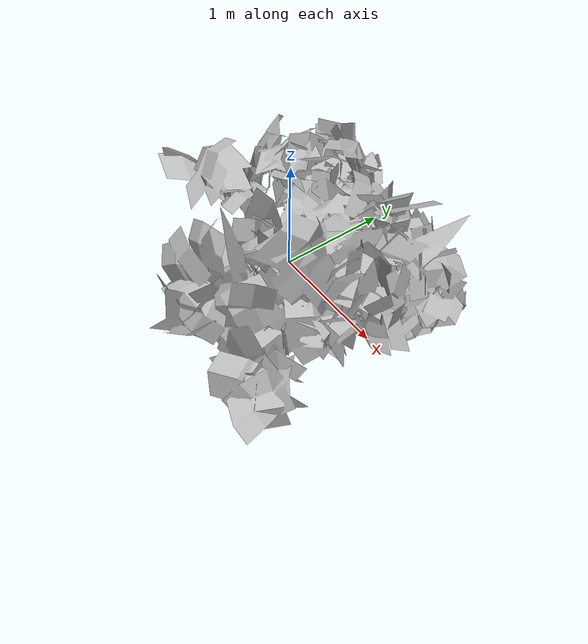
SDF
<?xml version="1.0" ?>
<sdf version="1.5">
  <model name="Bush 2">
     <static>true</static>
    <pose frame=''>0 0 0 1.57079 0 0</pose>
    <link name="link">
      <pose frame=''>0 0 0 0 0 0</pose>
      <collision name="collision">
        <geometry>
          <mesh>
            <scale>5 5 5</scale>
            <uri>model://bush_2/meshes/bush_2.obj</uri>
          </mesh>
        </geometry>
      </collision>
      <visual name="visual">
        <geometry>
          <mesh>

            <scale>5 5 5</scale>
            <uri>model://bush_2/meshes/bush_2.obj</uri>
          </mesh>
        </geometry>
      </visual>
    </link>
  </model>
</sdf>
